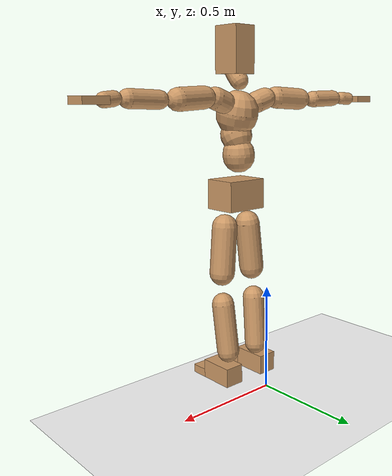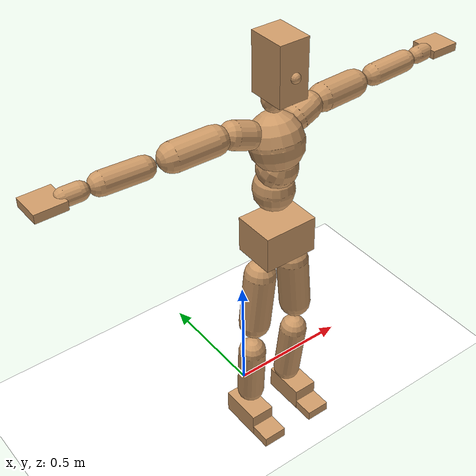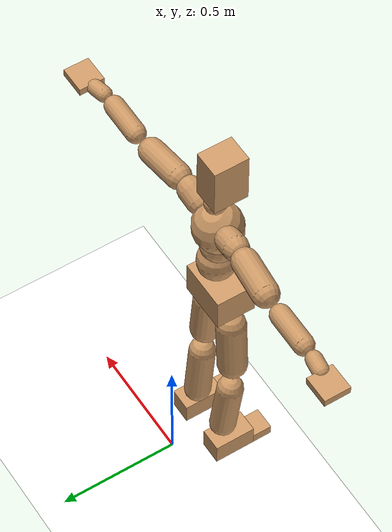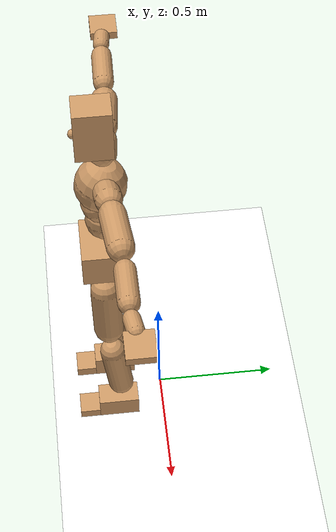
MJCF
<mujoco model="humanoid">
  <option integrator="implicitfast" />

  <visual>
    <global offwidth="1280" offheight="960" />
    <headlight active="1" ambient="0.34 0.34 0.34" diffuse="0.5 0.5 0.5" />
  </visual>

  <default>
    <joint damping="2" stiffness="2" armature="0.01" limited="true" solimplimit="0 .99 .01" />
    <geom condim="1" friction="0.7 0.005 0.0001" solimp=".99 .99 .003" solref="0.015 1" margin="0.001" rgba="0.8 0.6 .4 1" />
    <default class="smplcontact">
      <geom condim="3" friction="1. 0.005 0.0001" solref="0.015 1" solimp="0.98 0.98 0.001" priority="1" />
    </default>
    <default class="stiff_medium">
      <joint stiffness="10" />
    </default>
    <default class="stiff_medium_higher">
      <joint stiffness="50" />
    </default>
    <default class="stiff_high">
      <joint stiffness="100" />
    </default>
  </default>

  <asset>
    <texture type="skybox" builtin="gradient" rgb1="0.99 0.99 0.99" rgb2="0.608 0.828 0.892" width="100" />
    <texture builtin="flat" height="1278" mark="cross" markrgb="1 1 1" name="texgeom" random="0.01" rgb1="0.8 0.6 0.4" rgb2="0.8 0.6 0.4" type="cube" width="127" />
    <texture name="texplane" type="2d" builtin="checker" markrgb="1 1 1" rgb1="0.756 0.772 0.76" rgb2="0.6 0.6 0.6" width="100" height="100" />
    <material name="MatPlane" reflectance="0.5" texture="texplane" texrepeat="1 1" texuniform="true" />
    <material name="geom" texture="texgeom" texuniform="true" />
  </asset>

  <worldbody>
    <light name="tracking_light" pos="0 0 7" dir="0 0 -1" directional="true" cutoff="100" exponent="1" diffuse="1 1 1" specular="0.1 0.1 0.1" mode="trackcom" />
    <camera name="back" pos="0 3 2.4" xyaxes="-1 0 0 0 -1 2" mode="trackcom" />
    <camera name="side" pos="-3 0 2.4" xyaxes="0 -1 0 1 0 2" mode="trackcom" />
    <camera name="front_side" pos="-2.8 -2.8 0.8" xyaxes="0.5 -0.5 0 0.1 0.1 1" mode="trackcom" />
    <geom condim="3" name="floor" pos="0 0 0" rgba="1 1 1 1" size="100 100 .2" type="plane" material="MatPlane" />
    <body name="Pelvis" pos="-0.0018 -0.2233 0.9367" euler="90 0 0">
      <site name="Pelvis" size="0.01" />
      <freejoint name="Pelvis" />
      <geom type="box" pos="-0.0000 -0.0121 -0.0055" size="0.1069 0.0722 0.083" quat="1.0000 0.0000 0.0000 0.0000" density="3165.830099" name="Pelvis" />
      <body name="L_Hip" pos="0.0695 -0.0914 -0.0068">
        <joint name="L_Hip_x" type="hinge" pos="0 0 0" axis="1 0 0" stiffness="10.0" range="-160.0 22.92" class="stiff_medium" damping="15.0" armature="0.01"/>
        <joint name="L_Hip_y" type="hinge" pos="0 0 0" axis="0 1 0" stiffness="10.0" range="-70.0 70.0" class="stiff_medium" damping="10.000000000000007" armature="0.010000000000000014"/>
        <joint name="L_Hip_z" type="hinge" pos="0 0 0" axis="0 0 1" stiffness="10.0" range="-28.65 90.0" class="stiff_medium" damping="9.999999999999998" armature="0.009999999999999998"/>
        <geom type="capsule" density="2040.816327" fromto="0.0069 -0.075 -0.0009 0.0274 -0.3002 -0.0036" size="0.0615" name="L_Hip" />
        <body name="L_Knee" pos="0.0343 -0.3752 -0.0045">
          <joint name="L_Knee_x" type="hinge" pos="0 0 0" axis="1 0 0" range="-5.16 171.89" damping="8.000000000000004" armature="0.010000000000000009" stiffness="2.0"/>
          <joint name="L_Knee_y" type="hinge" pos="0 0 0" axis="0 1 0" range="-4.58 6.88" damping="8.000000000000005" armature="0.010000000000000014" stiffness="2.0"/>
          <joint name="L_Knee_z" type="hinge" pos="0 0 0" axis="0 0 1" range="-6.88 4.58" damping="8.0" armature="0.010000000000000002" stiffness="2.0"/>
          <geom type="capsule" density="1234.567901" fromto="-0.0027 -0.0796 -0.0087 -0.0109 -0.3184 -0.035" size="0.0541" name="L_Knee" />
          <body name="L_Ankle" pos="-0.0136 -0.398 -0.0437">
            <joint name="L_Ankle_x" type="hinge" pos="0 0 0" axis="1 0 0" range="-45.84 45.84" class="stiff_medium" damping="6.000000000000062" armature="0.010000000000000212" stiffness="10.0"/>
            <joint name="L_Ankle_y" type="hinge" pos="0 0 0" axis="0 1 0" range="-74.48 22.92" class="stiff_medium" damping="3.0000000000000013" armature="0.010000000000000009" stiffness="10.0"/>
            <joint name="L_Ankle_z" type="hinge" pos="0 0 0" axis="0 0 1" range="-4.58 4.58" class="stiff_medium" damping="6.000000000000057" armature="0.010000000000000193" stiffness="10.0"/>
            <geom type="box" pos="0.0233 -0.0239 0.0242" size="0.0483 0.0464 0.085" quat="1.0000 0.0000 0.0000 0.0000" density="449.071558" name="L_Ankle" class="smplcontact" />
            <body name="L_Toe" pos="0.0264 -0.0558 0.1193">
              <joint name="L_Toe_x" type="hinge" pos="0 0 0" axis="1 0 0" range="-91.67 22.92" armature="0.009999999999999181" damping="1.999999999999918" stiffness="2.0"/>
              <joint name="L_Toe_y" type="hinge" pos="0 0 0" axis="0 1 0" range="-4.58 4.58" armature="0.010000000000000024" damping="2.000000000000002" stiffness="2.0"/>
              <joint name="L_Toe_z" type="hinge" pos="0 0 0" axis="0 0 1" range="-4.58 4.58" armature="0.009999999999998867" damping="1.9999999999998868" stiffness="2.0"/>
              <geom type="box" pos="-0.003 0.0055 0.0248" size="0.0478 0.02 0.0496" quat="1.0000 0.0000 0.0000 0.0000" density="423.206892" name="L_Toe" class="smplcontact" />
            </body>
          </body>
        </body>
      </body>
      <body name="R_Hip" pos="-0.0677 -0.0905 -0.0043">
        <joint name="R_Hip_x" type="hinge" pos="0 0 0" axis="1 0 0" stiffness="10.0" range="-160.0 22.92" class="stiff_medium" damping="15.0" armature="0.01"/>
        <joint name="R_Hip_y" type="hinge" pos="0 0 0" axis="0 1 0" stiffness="10.0" range="-70.0 70.0" class="stiff_medium" damping="10.000000000000007" armature="0.010000000000000014"/>
        <joint name="R_Hip_z" type="hinge" pos="0 0 0" axis="0 0 1" stiffness="10.0" range="-90.0 28.65" class="stiff_medium" damping="9.999999999999998" armature="0.009999999999999998"/>
        <geom type="capsule" density="2040.816327" fromto="-0.0077 -0.0765 -0.0018 -0.0306 -0.3061 -0.0071" size="0.0606" name="R_Hip" />
        <body name="R_Knee" pos="-0.0383 -0.3826 -0.0089">
          <joint name="R_Knee_x" type="hinge" pos="0 0 0" axis="1 0 0" range="-5.16 171.89" damping="8.000000000000004" armature="0.010000000000000009" stiffness="2.0"/>
          <joint name="R_Knee_y" type="hinge" pos="0 0 0" axis="0 1 0" range="-6.88 4.58" damping="8.000000000000005" armature="0.010000000000000014" stiffness="2.0"/>
          <joint name="R_Knee_z" type="hinge" pos="0 0 0" axis="0 0 1" range="-4.58 6.88" damping="8.0" armature="0.010000000000000002" stiffness="2.0"/>
          <geom type="capsule" density="1234.567901" fromto="0.0032 -0.0797 -0.0085 0.0126 -0.3187 -0.0338" size="0.0541" name="R_Knee" />
          <body name="R_Ankle" pos="0.0158 -0.3984 -0.0423">
            <joint name="R_Ankle_x" type="hinge" pos="0 0 0" axis="1 0 0" range="-45.84 45.84" class="stiff_medium" damping="6.000000000000062" armature="0.010000000000000212" stiffness="10.0"/>
            <joint name="R_Ankle_y" type="hinge" pos="0 0 0" axis="0 1 0" range="-22.92 74.48" class="stiff_medium" damping="3.0000000000000013" armature="0.010000000000000009" stiffness="10.0"/>
            <joint name="R_Ankle_z" type="hinge" pos="0 0 0" axis="0 0 1" range="-4.58 4.58" class="stiff_medium" damping="6.000000000000057" armature="0.010000000000000193" stiffness="10.0"/>
            <geom type="box" pos="-0.0212 -0.0174 0.0256" size="0.0483 0.0478 0.0865" quat="1.0000 0.0000 0.0000 0.0000" density="434.700981" name="R_Ankle" class="smplcontact" />
            <body name="R_Toe" pos="-0.0254 -0.0481 0.1233">
              <joint name="R_Toe_x" type="hinge" pos="0 0 0" axis="1 0 0" range="-91.67 22.92" armature="0.009999999999999181" damping="1.999999999999918" stiffness="2.0"/>
              <joint name="R_Toe_y" type="hinge" pos="0 0 0" axis="0 1 0" range="-4.58 4.58" armature="0.010000000000000024" damping="2.000000000000002" stiffness="2.0"/>
              <joint name="R_Toe_z" type="hinge" pos="0 0 0" axis="0 0 1" range="-4.58 4.58" armature="0.009999999999998867" damping="1.9999999999998868" stiffness="2.0"/>
              <geom type="box" pos="0.0042 0.0045 0.0227" size="0.0479 0.0216 0.0493" quat="1.0000 0.0000 0.0000 0.0000" density="407.384095" name="R_Toe" class="smplcontact" />
            </body>
          </body>
        </body>
      </body>
      <body name="Torso" pos="-0.0025 0.109 -0.0267">
        <joint name="Torso_x" type="hinge" pos="0 0 0" axis="1 0 0" range="-25.78 57.3" class="stiff_medium" damping="14.25966669936601" armature="0.009414263277724336" stiffness="9.599528260869564"/>
        <joint name="Torso_y" type="hinge" pos="0 0 0" axis="0 1 0" range="-57.3 57.3" class="stiff_high" damping="19.544820281493664" armature="0.009979920658864433" stiffness="95.69214347826089"/>
        <joint name="Torso_z" type="hinge" pos="0 0 0" axis="0 0 1" range="-34.38 34.38" class="stiff_high" damping="19.263363435987642" armature="0.009604884719594736" stiffness="96.58553478260872"/>
        <geom type="capsule" density="2040.816327" fromto="0.0025 0.0608 0.0005 0.003 0.0743 0.0006" size="0.0769" name="Torso" />
        <body name="Spine" pos="0.0055 0.1352 0.0011">
          <joint name="Spine_x" type="hinge" pos="0 0 0" axis="1 0 0" stiffness="9.51693152173913" range="-25.78 57.3" class="stiff_medium" damping="14.0333225718655" armature="0.009196901891524422"/>
          <joint name="Spine_y" type="hinge" pos="0 0 0" axis="0 1 0" stiffness="9.528484565217392" range="-57.3 57.3" class="stiff_high" damping="7.801332452529402" armature="0.009980074024745357"/>
          <joint name="Spine_z" type="hinge" pos="0 0 0" axis="0 0 1" stiffness="19.08670565217391" range="-34.38 34.38" class="stiff_high" damping="11.49959078288821" armature="0.009622796459583095"/>
          <geom type="capsule" density="2040.816327" fromto="0.0007 0.0238 0.0114 0.0008 0.0291 0.014" size="0.0755" name="Spine" />
          <body name="Chest" pos="0.0015 0.0529 0.0254">
            <joint name="Chest_x" type="hinge" pos="0 0 0" axis="1 0 0" stiffness="9.38432652173913" range="-25.78 57.3" class="stiff_medium" damping="13.853430483576625" armature="0.009089270555712996"/>
            <joint name="Chest_y" type="hinge" pos="0 0 0" axis="0 1 0" stiffness="9.642867608695651" range="-57.3 57.3" class="stiff_high" damping="7.848758314991081" armature="0.009981957907091785"/>
            <joint name="Chest_z" type="hinge" pos="0 0 0" axis="0 0 1" stiffness="18.841775217391305" range="-34.38 34.38" class="stiff_high" damping="11.443462703994788" armature="0.009652962127065854"/>
            <geom type="capsule" density="2040.816327" fromto="-0.0009 0.0682 -0.0173 -0.001 0.0833 -0.0212" size="0.1002" name="Chest" />
            <body name="Neck" pos="-0.0028 0.2139 -0.0429">
              <joint name="Neck_x" type="hinge" pos="0 0 0" axis="1 0 0" range="-28.65 57.3" class="stiff_medium_higher" damping="8.549585392902868" armature="0.008427452718459648" stiffness="43.3674402173913"/>
              <joint name="Neck_y" type="hinge" pos="0 0 0" axis="0 1 0" range="-40.11 40.11" class="stiff_medium_higher" damping="8.38451884998878" armature="0.008121238769960258" stiffness="43.28167065217391"/>
              <joint name="Neck_z" type="hinge" pos="0 0 0" axis="0 0 1" range="-40.11 40.11" class="stiff_medium_higher" damping="8.523425680078757" armature="0.008428904148462769" stiffness="43.095035869565216"/>
              <geom type="capsule" density="1000" fromto="0.001 0.013 0.0103 0.0041 0.052 0.0411" size="0.0436" name="Neck" />
              <body name="Head" pos="0.0052 0.065 0.0513">
                <joint name="Head_x" type="hinge" pos="0 0 0" axis="1 0 0" range="-28.65 57.3" class="stiff_medium_higher" damping="1.6767911623733842" armature="0.008198363033134527" stiffness="42.868749999999984"/>
                <joint name="Head_y" type="hinge" pos="0 0 0" axis="0 1 0" range="-40.11 40.11" class="stiff_medium_higher" damping="1.6330638083935347" armature="0.007776344663317676" stiffness="42.868749999999984"/>
                <joint name="Head_z" type="hinge" pos="0 0 0" axis="0 0 1" range="-40.11 40.11" class="stiff_medium_higher" damping="1.6789266984104956" armature="0.008219258955053413" stiffness="42.868749999999984"/>
                <geom type="box" pos="-0.0042 0.0876 -0.0116" size="0.05757 0.10963 0.0722" quat="1.0000 0.0000 0.0000 0.0000" density="1018.069894" name="Head" />
                <geom type="capsule" name="nose" size="0.019 0.0095" pos="0 0.07 0.05" quat="1 0 0 0" mass="0" contype="0" conaffinity="0" />
              </body>
            </body>
            <body name="L_Thorax" pos="0.0788 0.1217 -0.0341">
              <joint name="L_Thorax_x" type="hinge" pos="0 0 0" axis="1 0 0" range="-10.89 4.58" class="stiff_medium_higher" damping="20.00000000000004" armature="0.010000000000000042" stiffness="50.0"/>
              <joint name="L_Thorax_y" type="hinge" pos="0 0 0" axis="0 1 0" range="-28.65 17.19" class="stiff_medium_higher" damping="20.000000000000004" armature="0.010000000000000005" stiffness="50.0"/>
              <joint name="L_Thorax_z" type="hinge" pos="0 0 0" axis="0 0 1" range="-31.51 40.11" class="stiff_medium_higher" damping="19.999999999999996" armature="0.009999999999999998" stiffness="50.0"/>
              <geom type="capsule" density="1000" fromto="0.0182 0.0061 -0.0018 0.0728 0.0244 -0.0071" size="0.0521" name="L_Thorax" />
              <body name="L_Shoulder" pos="0.091 0.0305 -0.0089">
                <joint name="L_Shoulder_x" type="hinge" pos="0 0 0" axis="1 0 0" range="-97.4 97.4" class="stiff_medium" damping="6.000000000000008" armature="0.010000000000000026" stiffness="10.0"/>
                <joint name="L_Shoulder_y" type="hinge" pos="0 0 0" axis="0 1 0" range="-108.86 80.21" class="stiff_medium" damping="6.0" armature="0.01" stiffness="10.0"/>
                <joint name="L_Shoulder_z" type="hinge" pos="0 0 0" axis="0 0 1" range="-97.4 85.94" class="stiff_medium" damping="6.0" armature="0.01" stiffness="10.0"/>
                <geom type="capsule" density="1000" fromto="0.0519 -0.0026 -0.0055 0.2077 -0.0102 -0.022" size="0.0517" name="L_Shoulder" />
                <body name="L_Elbow" pos="0.2596 -0.0128 -0.0275">
                  <joint name="L_Elbow_x" type="hinge" pos="0 0 0" axis="1 0 0" range="-17.19 4.58" damping="4.999999999999904" armature="0.009999999999999617" stiffness="2.0"/>
                  <joint name="L_Elbow_y" type="hinge" pos="0 0 0" axis="0 1 0" range="-180.0 17.19" damping="5.000000000000004" armature="0.010000000000000018" stiffness="2.0"/>
                  <joint name="L_Elbow_z" type="hinge" pos="0 0 0" axis="0 0 1" range="-100.84 4.58" damping="4.999999999999999" armature="0.009999999999999998" stiffness="2.0"/>
                  <geom type="capsule" density="1000" fromto="0.0498 0.0018 -0.0002 0.1994 0.0072 -0.0009" size="0.0405" name="L_Elbow" />
                  <body name="L_Wrist" pos="0.2492 0.009 -0.0012">
                    <joint name="L_Wrist_x" type="hinge" pos="0 0 0" axis="1 0 0" range="-180.0 22.92" armature="0.00999999999999964" damping="1.9999999999999638" stiffness="2.0"/>
                    <joint name="L_Wrist_y" type="hinge" pos="0 0 0" axis="0 1 0" range="-17.19 17.19" armature="0.009999999999999894" damping="1.9999999999999893" stiffness="2.0"/>
                    <joint name="L_Wrist_z" type="hinge" pos="0 0 0" axis="0 0 1" range="-22.92 22.92" armature="0.009999999999999745" damping="1.9999999999999745" stiffness="2.0"/>
                    <geom type="capsule" density="1000" fromto="0.0168 -0.0016 -0.003 0.0672 -0.0065 -0.012" size="0.0318" name="L_Wrist" class="smplcontact" />
                    <body name="L_Hand" pos="0.084 -0.0082 -0.0149">
                      <joint name="L_Hand_x" type="hinge" pos="0 0 0" axis="1 0 0" range="-17.19 17.19" armature="0.00999999999999982" damping="1.999999999999982" stiffness="2.0"/>
                      <joint name="L_Hand_y" type="hinge" pos="0 0 0" axis="0 1 0" range="-51.57 51.57" armature="0.010000000000000156" damping="2.0000000000000155" stiffness="2.0"/>
                      <joint name="L_Hand_z" type="hinge" pos="0 0 0" axis="0 0 1" range="-91.67 91.67" armature="0.010000000000000007" damping="2.0000000000000004" stiffness="2.0"/>
                      <geom type="box" pos="0.0493 0.001 -0.0058" size="0.0585 0.0158 0.0538" quat="1.0000 0.0000 0.0000 0.0000" density="400.552564" name="L_Hand" class="smplcontact" />
                    </body>
                  </body>
                </body>
              </body>
            </body>
            <body name="R_Thorax" pos="-0.0818 0.1188 -0.0386">
              <joint name="R_Thorax_x" type="hinge" pos="0 0 0" axis="1 0 0" range="-10.89 4.58" class="stiff_medium_higher" damping="20.00000000000004" armature="0.010000000000000042" stiffness="50.0"/>
              <joint name="R_Thorax_y" type="hinge" pos="0 0 0" axis="0 1 0" range="-17.19 28.65" class="stiff_medium_higher" damping="20.000000000000004" armature="0.010000000000000005" stiffness="50.0"/>
              <joint name="R_Thorax_z" type="hinge" pos="0 0 0" axis="0 0 1" range="-40.11 31.51" class="stiff_medium_higher" damping="19.999999999999996" armature="0.009999999999999998" stiffness="50.0"/>
              <geom type="capsule" density="1000" fromto="-0.0192 0.0065 -0.0018 -0.0768 0.026 -0.0073" size="0.0511" name="R_Thorax" />
              <body name="R_Shoulder" pos="-0.096 0.0326 -0.0091">
                <joint name="R_Shoulder_x" type="hinge" pos="0 0 0" axis="1 0 0" range="-97.4 97.4" class="stiff_medium" damping="6.000000000000008" armature="0.010000000000000026" stiffness="10.0"/>
                <joint name="R_Shoulder_y" type="hinge" pos="0 0 0" axis="0 1 0" range="-80.21 108.86" class="stiff_medium" damping="6.0" armature="0.01" stiffness="10.0"/>
                <joint name="R_Shoulder_z" type="hinge" pos="0 0 0" axis="0 0 1" range="-85.94 97.4" class="stiff_medium" damping="6.0" armature="0.01" stiffness="10.0"/>
                <geom type="capsule" density="1000" fromto="-0.0507 -0.0027 -0.0043 -0.203 -0.0107 -0.0171" size="0.0531" name="R_Shoulder" />
                <body name="R_Elbow" pos="-0.2537 -0.0133 -0.0214">
                  <joint name="R_Elbow_x" type="hinge" pos="0 0 0" axis="1 0 0" range="-17.19 4.58" damping="4.999999999999904" armature="0.009999999999999617" stiffness="2.0"/>
                  <joint name="R_Elbow_y" type="hinge" pos="0 0 0" axis="0 1 0" range="-17.19 180.0" damping="5.000000000000004" armature="0.010000000000000018" stiffness="2.0"/>
                  <joint name="R_Elbow_z" type="hinge" pos="0 0 0" axis="0 0 1" range="-4.58 100.84" damping="4.999999999999999" armature="0.009999999999999998" stiffness="2.0"/>
                  <geom type="capsule" density="1000" fromto="-0.0511 0.0016 -0.0011 -0.2042 0.0062 -0.0044" size="0.0408" name="R_Elbow" />
                  <body name="R_Wrist" pos="-0.2553 0.0078 -0.0056">
                    <joint name="R_Wrist_x" type="hinge" pos="0 0 0" axis="1 0 0" range="-180.0 22.92" armature="0.00999999999999964" damping="1.9999999999999638" stiffness="2.0"/>
                    <joint name="R_Wrist_y" type="hinge" pos="0 0 0" axis="0 1 0" range="-17.19 17.19" armature="0.009999999999999894" damping="1.9999999999999893" stiffness="2.0"/>
                    <joint name="R_Wrist_z" type="hinge" pos="0 0 0" axis="0 0 1" range="-22.92 22.92" armature="0.009999999999999745" damping="1.9999999999999745" stiffness="2.0"/>
                    <geom type="capsule" density="1000" fromto="-0.0169 -0.0012 -0.0021 -0.0677 -0.0049 -0.0083" size="0.0326" name="R_Wrist" class="smplcontact" />
                    <body name="R_Hand" pos="-0.0846 -0.0061 -0.0103">
                      <joint name="R_Hand_x" type="hinge" pos="0 0 0" axis="1 0 0" range="-17.19 17.19" armature="0.00999999999999982" damping="1.999999999999982" stiffness="2.0"/>
                      <joint name="R_Hand_y" type="hinge" pos="0 0 0" axis="0 1 0" range="-51.57 51.57" armature="0.010000000000000156" damping="2.0000000000000155" stiffness="2.0"/>
                      <joint name="R_Hand_z" type="hinge" pos="0 0 0" axis="0 0 1" range="-91.67 91.67" armature="0.010000000000000007" damping="2.0000000000000004" stiffness="2.0"/>
                      <geom type="box" pos="-0.0462 -0.0009 -0.0079" size="0.0569 0.0164 0.0546" quat="1.0000 0.0000 0.0000 0.0000" density="403.679611" name="R_Hand" class="smplcontact" />
                    </body>
                  </body>
                </body>
              </body>
            </body>
          </body>
        </body>
      </body>
    </body>
  </worldbody>
  <actuator>
    <general name="L_Hip_x" joint="L_Hip_x" biastype="affine" gainprm="287.33006409732246" biasprm="-215.3247604770444 -180.0 -2.0" ctrllimited="true" ctrlrange="-1 1" forcerange="-360.0 360.0" />
    <general name="L_Hip_y" joint="L_Hip_y" biastype="affine" gainprm="219.9114857512855" biasprm="0.0 -180.0 -2.0000000000000013" ctrllimited="true" ctrlrange="-1 1" forcerange="-360.0 360.0" />
    <general name="L_Hip_z" joint="L_Hip_z" biastype="affine" gainprm="186.3749841742145" biasprm="96.3683546488669 -180.0 -1.9999999999999998" ctrllimited="true" ctrlrange="-1 1" forcerange="-360.0 360.0" />
    <general name="L_Knee_x" joint="L_Knee_x" biastype="affine" gainprm="278.10948965903646" biasprm="261.8988715665131 -180.0 -2.000000000000001" ctrllimited="true" ctrlrange="-1 1" forcerange="-360.0 360.0" />
    <general name="L_Knee_y" joint="L_Knee_y" biastype="affine" gainprm="18.001325905069514" biasprm="3.612831551628262 -180.0 -2.0000000000000013" ctrllimited="true" ctrlrange="-1 1" forcerange="-360.0 360.0" />
    <general name="L_Knee_z" joint="L_Knee_z" biastype="affine" gainprm="18.001325905069514" biasprm="-3.612831551628262 -180.0 -2.0" ctrllimited="true" ctrlrange="-1 1" forcerange="-360.0 360.0" />
    <general name="L_Ankle_x" joint="L_Ankle_x" biastype="affine" gainprm="72.00530362027807" biasprm="0.0 -90.0 -2.000000000000021" ctrllimited="true" ctrlrange="-1 1" forcerange="-180.0 180.0" />
    <general name="L_Ankle_y" joint="L_Ankle_y" biastype="affine" gainprm="76.49778111491148" biasprm="-40.49512930477244 -90.0 -2.000000000000001" ctrllimited="true" ctrlrange="-1 1" forcerange="-180.0 180.0" />
    <general name="L_Ankle_z" joint="L_Ankle_z" biastype="affine" gainprm="7.1942471767206255" biasprm="0.0 -90.0 -2.000000000000019" ctrllimited="true" ctrlrange="-1 1" forcerange="-180.0 180.0" />
    <general name="L_Toe_x" joint="L_Toe_x" biastype="affine" gainprm="71.99902043497087" biasprm="-43.19689898685965 -72.0 -0.7999999999999673" ctrllimited="true" ctrlrange="-1 1" forcerange="-144.0 144.0" />
    <general name="L_Toe_y" joint="L_Toe_y" biastype="affine" gainprm="5.755397741376501" biasprm="0.0 -72.0 -0.8000000000000009" ctrllimited="true" ctrlrange="-1 1" forcerange="-144.0 144.0" />
    <general name="L_Toe_z" joint="L_Toe_z" biastype="affine" gainprm="5.755397741376501" biasprm="0.0 -72.0 -0.7999999999999547" ctrllimited="true" ctrlrange="-1 1" forcerange="-144.0 144.0" />
    <general name="R_Hip_x" joint="R_Hip_x" biastype="affine" gainprm="287.33006409732246" biasprm="-215.3247604770444 -180.0 -2.0" ctrllimited="true" ctrlrange="-1 1" forcerange="-360.0 360.0" />
    <general name="R_Hip_y" joint="R_Hip_y" biastype="affine" gainprm="219.9114857512855" biasprm="0.0 -180.0 -2.0000000000000013" ctrllimited="true" ctrlrange="-1 1" forcerange="-360.0 360.0" />
    <general name="R_Hip_z" joint="R_Hip_z" biastype="affine" gainprm="186.3749841742145" biasprm="-96.3683546488669 -180.0 -1.9999999999999998" ctrllimited="true" ctrlrange="-1 1" forcerange="-360.0 360.0" />
    <general name="R_Knee_x" joint="R_Knee_x" biastype="affine" gainprm="278.10948965903646" biasprm="261.8988715665131 -180.0 -2.000000000000001" ctrllimited="true" ctrlrange="-1 1" forcerange="-360.0 360.0" />
    <general name="R_Knee_y" joint="R_Knee_y" biastype="affine" gainprm="18.001325905069514" biasprm="-3.612831551628262 -180.0 -2.0000000000000013" ctrllimited="true" ctrlrange="-1 1" forcerange="-360.0 360.0" />
    <general name="R_Knee_z" joint="R_Knee_z" biastype="affine" gainprm="18.001325905069514" biasprm="3.612831551628262 -180.0 -2.0" ctrllimited="true" ctrlrange="-1 1" forcerange="-360.0 360.0" />
    <general name="R_Ankle_x" joint="R_Ankle_x" biastype="affine" gainprm="72.00530362027807" biasprm="0.0 -90.0 -2.000000000000021" ctrllimited="true" ctrlrange="-1 1" forcerange="-180.0 180.0" />
    <general name="R_Ankle_y" joint="R_Ankle_y" biastype="affine" gainprm="76.49778111491148" biasprm="40.49512930477244 -90.0 -2.000000000000001" ctrllimited="true" ctrlrange="-1 1" forcerange="-180.0 180.0" />
    <general name="R_Ankle_z" joint="R_Ankle_z" biastype="affine" gainprm="7.1942471767206255" biasprm="0.0 -90.0 -2.000000000000019" ctrllimited="true" ctrlrange="-1 1" forcerange="-180.0 180.0" />
    <general name="R_Toe_x" joint="R_Toe_x" biastype="affine" gainprm="71.99902043497087" biasprm="-43.19689898685965 -72.0 -0.7999999999999673" ctrllimited="true" ctrlrange="-1 1" forcerange="-144.0 144.0" />
    <general name="R_Toe_y" joint="R_Toe_y" biastype="affine" gainprm="5.755397741376501" biasprm="0.0 -72.0 -0.8000000000000009" ctrllimited="true" ctrlrange="-1 1" forcerange="-144.0 144.0" />
    <general name="R_Toe_z" joint="R_Toe_z" biastype="affine" gainprm="5.755397741376501" biasprm="0.0 -72.0 -0.7999999999999547" ctrllimited="true" ctrlrange="-1 1" forcerange="-144.0 144.0" />
    <general name="Torso_x" joint="Torso_x" biastype="affine" gainprm="167.03404293105618" biasprm="63.371606080728085 -230.38867826086954 -3.8025777864976025" ctrllimited="true" ctrlrange="-1 1" forcerange="-345.58301739130434 345.58301739130434" />
    <general name="Torso_y" joint="Torso_y" biastype="affine" gainprm="229.6780615075795" biasprm="0.0 -229.6611443478261 -3.908964056298733" ctrllimited="true" ctrlrange="-1 1" forcerange="-344.4917165217392 344.4917165217392" />
    <general name="Torso_z" joint="Torso_z" biastype="affine" gainprm="139.09341514697337" biasprm="0.0 -231.80528347826092 -3.8526726871975288" ctrllimited="true" ctrlrange="-1 1" forcerange="-347.7079252173914 347.7079252173914" />
    <general name="Spine_x" joint="Spine_x" biastype="affine" gainprm="165.59684030036894" biasprm="62.826340951704715 -228.40635652173913 -3.7422193524974667" ctrllimited="true" ctrlrange="-1 1" forcerange="-342.6095347826087 342.6095347826087" />
    <general name="Spine_y" joint="Spine_y" biastype="affine" gainprm="228.70047471987047" biasprm="0.0 -228.6836295652174 -3.900666226264701" ctrllimited="true" ctrlrange="-1 1" forcerange="-343.02544434782607 343.02544434782607" />
    <general name="Spine_z" joint="Spine_z" biastype="affine" gainprm="137.434403559566" biasprm="0.0 -229.0404678260869 -3.8331969276294036" ctrllimited="true" ctrlrange="-1 1" forcerange="-343.56070173913037 343.56070173913037" />
    <general name="Chest_x" joint="Chest_x" biastype="affine" gainprm="163.28948220307987" biasprm="61.95094462013813 -225.22383652173912 -3.6942481289537668" ctrllimited="true" ctrlrange="-1 1" forcerange="-337.8357547826087 337.8357547826087" />
    <general name="Chest_y" joint="Chest_y" biastype="affine" gainprm="231.44586997809165" biasprm="0.0 -231.4288226086956 -3.9243791574955407" ctrllimited="true" ctrlrange="-1 1" forcerange="-347.14323391304345 347.14323391304345" />
    <general name="Chest_z" joint="Chest_z" biastype="affine" gainprm="135.67077452732917" biasprm="0.0 -226.10130260869568 -3.814487567998263" ctrllimited="true" ctrlrange="-1 1" forcerange="-339.1519539130435 339.1519539130435" />
    <general name="Neck_x" joint="Neck_x" biastype="affine" gainprm="23.420142750656385" biasprm="7.806714250218795 -31.224556956521738 -0.6839668314322296" ctrllimited="true" ctrlrange="-1 1" forcerange="-62.449113913043476 62.449113913043476" />
    <general name="Neck_y" joint="Neck_y" biastype="affine" gainprm="21.815568855518624" biasprm="0.0 -31.162802869565216 -0.6707615079991024" ctrllimited="true" ctrlrange="-1 1" forcerange="-62.32560573913043 62.32560573913043" />
    <general name="Neck_z" joint="Neck_z" biastype="affine" gainprm="21.72149799620372" biasprm="0.0 -31.028425826086956 -0.6818740544063006" ctrllimited="true" ctrlrange="-1 1" forcerange="-62.05685165217391 62.05685165217391" />
    <general name="Head_x" joint="Head_x" biastype="affine" gainprm="15.43388679785897" biasprm="5.144628932619656 -20.57699999999999 -0.6707164649493538" ctrllimited="true" ctrlrange="-1 1" forcerange="-41.15399999999998 41.15399999999998" />
    <general name="Head_y" joint="Head_y" biastype="affine" gainprm="14.404961011335038" biasprm="0.0 -20.57699999999999 -0.6532255233574139" ctrllimited="true" ctrlrange="-1 1" forcerange="-41.15399999999998 41.15399999999998" />
    <general name="Head_z" joint="Head_z" biastype="affine" gainprm="14.404961011335038" biasprm="0.0 -20.57699999999999 -0.6715706793641982" ctrllimited="true" ctrlrange="-1 1" forcerange="-41.15399999999998 41.15399999999998" />
    <general name="L_Thorax_x" joint="L_Thorax_x" biastype="affine" gainprm="16.200146117011364" biasprm="-6.6078165480505335 -120.0 -1.6000000000000032" ctrllimited="true" ctrlrange="-1 1" forcerange="-240.0 240.0" />
    <general name="L_Thorax_y" joint="L_Thorax_y" biastype="affine" gainprm="48.00353574685204" biasprm="-12.00088393671301 -120.0 -1.6000000000000005" ctrllimited="true" ctrlrange="-1 1" forcerange="-240.0 240.0" />
    <general name="L_Thorax_z" joint="L_Thorax_z" biastype="affine" gainprm="75.00028861670033" biasprm="9.00589894029074 -120.0 -1.5999999999999999" ctrllimited="true" ctrlrange="-1 1" forcerange="-240.0 240.0" />
    <general name="L_Shoulder_x" joint="L_Shoulder_x" biastype="affine" gainprm="81.5976331892389" biasprm="0.0 -48.0 -1.6000000000000023" ctrllimited="true" ctrlrange="-1 1" forcerange="-96.0 96.0" />
    <general name="L_Shoulder_y" joint="L_Shoulder_y" biastype="affine" gainprm="79.19745640189629" biasprm="-12.00088393671301 -48.0 -1.6" ctrllimited="true" ctrlrange="-1 1" forcerange="-96.0 96.0" />
    <general name="L_Shoulder_z" joint="L_Shoulder_z" biastype="affine" gainprm="76.79727961455369" biasprm="-4.800353574685214 -48.0 -1.6" ctrllimited="true" ctrlrange="-1 1" forcerange="-96.0 96.0" />
    <general name="L_Elbow_x" joint="L_Elbow_x" biastype="affine" gainprm="13.67849441372996" biasprm="-7.923096672353461 -72.0 -0.7999999999999847" ctrllimited="true" ctrlrange="-1 1" forcerange="-144.0 144.0" />
    <general name="L_Elbow_y" joint="L_Elbow_y" biastype="affine" gainprm="123.89813107227425" biasprm="-102.29653998619085 -72.0 -0.8000000000000007" ctrllimited="true" ctrlrange="-1 1" forcerange="-144.0 144.0" />
    <general name="L_Elbow_z" joint="L_Elbow_z" biastype="affine" gainprm="66.23733950828719" biasprm="-60.4819417669107 -72.0 -0.7999999999999999" ctrllimited="true" ctrlrange="-1 1" forcerange="-144.0 144.0" />
    <general name="L_Wrist_x" joint="L_Wrist_x" biastype="affine" gainprm="21.24973270888136" biasprm="-16.449379134196157 -12.0 -0.7999999999999856" ctrllimited="true" ctrlrange="-1 1" forcerange="-24.0 24.0" />
    <general name="L_Wrist_y" joint="L_Wrist_y" biastype="affine" gainprm="3.6002651810139037" biasprm="0.0 -12.0 -0.7999999999999958" ctrllimited="true" ctrlrange="-1 1" forcerange="-24.0 24.0" />
    <general name="L_Wrist_z" joint="L_Wrist_z" biastype="affine" gainprm="4.800353574685205" biasprm="0.0 -12.0 -0.7999999999999898" ctrllimited="true" ctrlrange="-1 1" forcerange="-24.0 24.0" />
    <general name="L_Hand_x" joint="L_Hand_x" biastype="affine" gainprm="3.6002651810139037" biasprm="0.0 -12.0 -0.7999999999999928" ctrllimited="true" ctrlrange="-1 1" forcerange="-24.0 24.0" />
    <general name="L_Hand_y" joint="L_Hand_y" biastype="affine" gainprm="10.800795543041708" biasprm="0.0 -12.0 -0.8000000000000063" ctrllimited="true" ctrlrange="-1 1" forcerange="-24.0 24.0" />
    <general name="L_Hand_z" joint="L_Hand_z" biastype="affine" gainprm="19.199319903638422" biasprm="0.0 -12.0 -0.8000000000000003" ctrllimited="true" ctrlrange="-1 1" forcerange="-24.0 24.0" />
    <general name="R_Thorax_x" joint="R_Thorax_x" biastype="affine" gainprm="16.200146117011364" biasprm="-6.6078165480505335 -120.0 -1.6000000000000032" ctrllimited="true" ctrlrange="-1 1" forcerange="-240.0 240.0" />
    <general name="R_Thorax_y" joint="R_Thorax_y" biastype="affine" gainprm="48.00353574685204" biasprm="12.000883936713002 -120.0 -1.6000000000000005" ctrllimited="true" ctrlrange="-1 1" forcerange="-240.0 240.0" />
    <general name="R_Thorax_z" joint="R_Thorax_z" biastype="affine" gainprm="75.00028861670033" biasprm="-9.00589894029074 -120.0 -1.5999999999999999" ctrllimited="true" ctrlrange="-1 1" forcerange="-240.0 240.0" />
    <general name="R_Shoulder_x" joint="R_Shoulder_x" biastype="affine" gainprm="81.5976331892389" biasprm="0.0 -48.0 -1.6000000000000023" ctrllimited="true" ctrlrange="-1 1" forcerange="-96.0 96.0" />
    <general name="R_Shoulder_y" joint="R_Shoulder_y" biastype="affine" gainprm="79.19745640189629" biasprm="12.00088393671301 -48.0 -1.6" ctrllimited="true" ctrlrange="-1 1" forcerange="-96.0 96.0" />
    <general name="R_Shoulder_z" joint="R_Shoulder_z" biastype="affine" gainprm="76.79727961455369" biasprm="4.800353574685204 -48.0 -1.6" ctrllimited="true" ctrlrange="-1 1" forcerange="-96.0 96.0" />
    <general name="R_Elbow_x" joint="R_Elbow_x" biastype="affine" gainprm="13.67849441372996" biasprm="-7.923096672353461 -72.0 -0.7999999999999847" ctrllimited="true" ctrlrange="-1 1" forcerange="-144.0 144.0" />
    <general name="R_Elbow_y" joint="R_Elbow_y" biastype="affine" gainprm="123.89813107227425" biasprm="102.29653998619085 -72.0 -0.8000000000000007" ctrllimited="true" ctrlrange="-1 1" forcerange="-144.0 144.0" />
    <general name="R_Elbow_z" joint="R_Elbow_z" biastype="affine" gainprm="66.23733950828719" biasprm="60.481941766910694 -72.0 -0.7999999999999999" ctrllimited="true" ctrlrange="-1 1" forcerange="-144.0 144.0" />
    <general name="R_Wrist_x" joint="R_Wrist_x" biastype="affine" gainprm="21.24973270888136" biasprm="-16.449379134196157 -12.0 -0.7999999999999856" ctrllimited="true" ctrlrange="-1 1" forcerange="-24.0 24.0" />
    <general name="R_Wrist_y" joint="R_Wrist_y" biastype="affine" gainprm="3.6002651810139037" biasprm="0.0 -12.0 -0.7999999999999958" ctrllimited="true" ctrlrange="-1 1" forcerange="-24.0 24.0" />
    <general name="R_Wrist_z" joint="R_Wrist_z" biastype="affine" gainprm="4.800353574685205" biasprm="0.0 -12.0 -0.7999999999999898" ctrllimited="true" ctrlrange="-1 1" forcerange="-24.0 24.0" />
    <general name="R_Hand_x" joint="R_Hand_x" biastype="affine" gainprm="3.6002651810139037" biasprm="0.0 -12.0 -0.7999999999999928" ctrllimited="true" ctrlrange="-1 1" forcerange="-24.0 24.0" />
    <general name="R_Hand_y" joint="R_Hand_y" biastype="affine" gainprm="10.800795543041708" biasprm="0.0 -12.0 -0.8000000000000063" ctrllimited="true" ctrlrange="-1 1" forcerange="-24.0 24.0" />
    <general name="R_Hand_z" joint="R_Hand_z" biastype="affine" gainprm="19.199319903638422" biasprm="0.0 -12.0 -0.8000000000000003" ctrllimited="true" ctrlrange="-1 1" forcerange="-24.0 24.0" />
  </actuator>
  <contact>
    <exclude body1="Torso" body2="Chest" />
    <exclude body1="Head" body2="Chest" />
    <exclude body1="R_Knee" body2="R_Toe" />
    <exclude body1="R_Knee" body2="L_Ankle" />
    <exclude body1="R_Knee" body2="L_Toe" />
    <exclude body1="L_Knee" body2="L_Toe" />
    <exclude body1="L_Knee" body2="R_Ankle" />
    <exclude body1="L_Knee" body2="R_Toe" />
    <exclude body1="L_Shoulder" body2="Chest" />
    <exclude body1="R_Shoulder" body2="Chest" />
  </contact>
  <sensor>
    <framelinvel name="sensor_Pelvis_framelinvel" objtype="xbody" objname="Pelvis" />
    <framelinvel name="sensor_L_Hip_framelinvel" objtype="xbody" objname="L_Hip" />
    <framelinvel name="sensor_L_Knee_framelinvel" objtype="xbody" objname="L_Knee" />
    <framelinvel name="sensor_L_Ankle_framelinvel" objtype="xbody" objname="L_Ankle" />
    <framelinvel name="sensor_L_Toe_framelinvel" objtype="xbody" objname="L_Toe" />
    <framelinvel name="sensor_R_Hip_framelinvel" objtype="xbody" objname="R_Hip" />
    <framelinvel name="sensor_R_Knee_framelinvel" objtype="xbody" objname="R_Knee" />
    <framelinvel name="sensor_R_Ankle_framelinvel" objtype="xbody" objname="R_Ankle" />
    <framelinvel name="sensor_R_Toe_framelinvel" objtype="xbody" objname="R_Toe" />
    <framelinvel name="sensor_Torso_framelinvel" objtype="xbody" objname="Torso" />
    <framelinvel name="sensor_Spine_framelinvel" objtype="xbody" objname="Spine" />
    <framelinvel name="sensor_Chest_framelinvel" objtype="xbody" objname="Chest" />
    <framelinvel name="sensor_Neck_framelinvel" objtype="xbody" objname="Neck" />
    <framelinvel name="sensor_Head_framelinvel" objtype="xbody" objname="Head" />
    <framelinvel name="sensor_L_Thorax_framelinvel" objtype="xbody" objname="L_Thorax" />
    <framelinvel name="sensor_L_Shoulder_framelinvel" objtype="xbody" objname="L_Shoulder" />
    <framelinvel name="sensor_L_Elbow_framelinvel" objtype="xbody" objname="L_Elbow" />
    <framelinvel name="sensor_L_Wrist_framelinvel" objtype="xbody" objname="L_Wrist" />
    <framelinvel name="sensor_L_Hand_framelinvel" objtype="xbody" objname="L_Hand" />
    <framelinvel name="sensor_R_Thorax_framelinvel" objtype="xbody" objname="R_Thorax" />
    <framelinvel name="sensor_R_Shoulder_framelinvel" objtype="xbody" objname="R_Shoulder" />
    <framelinvel name="sensor_R_Elbow_framelinvel" objtype="xbody" objname="R_Elbow" />
    <framelinvel name="sensor_R_Wrist_framelinvel" objtype="xbody" objname="R_Wrist" />
    <framelinvel name="sensor_R_Hand_framelinvel" objtype="xbody" objname="R_Hand" />
    <frameangvel name="sensor_Pelvis_frameangvel" objtype="xbody" objname="Pelvis" />
    <frameangvel name="sensor_L_Hip_frameangvel" objtype="xbody" objname="L_Hip" />
    <frameangvel name="sensor_L_Knee_frameangvel" objtype="xbody" objname="L_Knee" />
    <frameangvel name="sensor_L_Ankle_frameangvel" objtype="xbody" objname="L_Ankle" />
    <frameangvel name="sensor_L_Toe_frameangvel" objtype="xbody" objname="L_Toe" />
    <frameangvel name="sensor_R_Hip_frameangvel" objtype="xbody" objname="R_Hip" />
    <frameangvel name="sensor_R_Knee_frameangvel" objtype="xbody" objname="R_Knee" />
    <frameangvel name="sensor_R_Ankle_frameangvel" objtype="xbody" objname="R_Ankle" />
    <frameangvel name="sensor_R_Toe_frameangvel" objtype="xbody" objname="R_Toe" />
    <frameangvel name="sensor_Torso_frameangvel" objtype="xbody" objname="Torso" />
    <frameangvel name="sensor_Spine_frameangvel" objtype="xbody" objname="Spine" />
    <frameangvel name="sensor_Chest_frameangvel" objtype="xbody" objname="Chest" />
    <frameangvel name="sensor_Neck_frameangvel" objtype="xbody" objname="Neck" />
    <frameangvel name="sensor_Head_frameangvel" objtype="xbody" objname="Head" />
    <frameangvel name="sensor_L_Thorax_frameangvel" objtype="xbody" objname="L_Thorax" />
    <frameangvel name="sensor_L_Shoulder_frameangvel" objtype="xbody" objname="L_Shoulder" />
    <frameangvel name="sensor_L_Elbow_frameangvel" objtype="xbody" objname="L_Elbow" />
    <frameangvel name="sensor_L_Wrist_frameangvel" objtype="xbody" objname="L_Wrist" />
    <frameangvel name="sensor_L_Hand_frameangvel" objtype="xbody" objname="L_Hand" />
    <frameangvel name="sensor_R_Thorax_frameangvel" objtype="xbody" objname="R_Thorax" />
    <frameangvel name="sensor_R_Shoulder_frameangvel" objtype="xbody" objname="R_Shoulder" />
    <frameangvel name="sensor_R_Elbow_frameangvel" objtype="xbody" objname="R_Elbow" />
    <frameangvel name="sensor_R_Wrist_frameangvel" objtype="xbody" objname="R_Wrist" />
    <frameangvel name="sensor_R_Hand_frameangvel" objtype="xbody" objname="R_Hand" />
    <subtreelinvel name="Chest_subtreelinvel" body="Chest" />
    <gyro name="Pelvis_gyro" site="Pelvis" />
  </sensor>
</mujoco>
